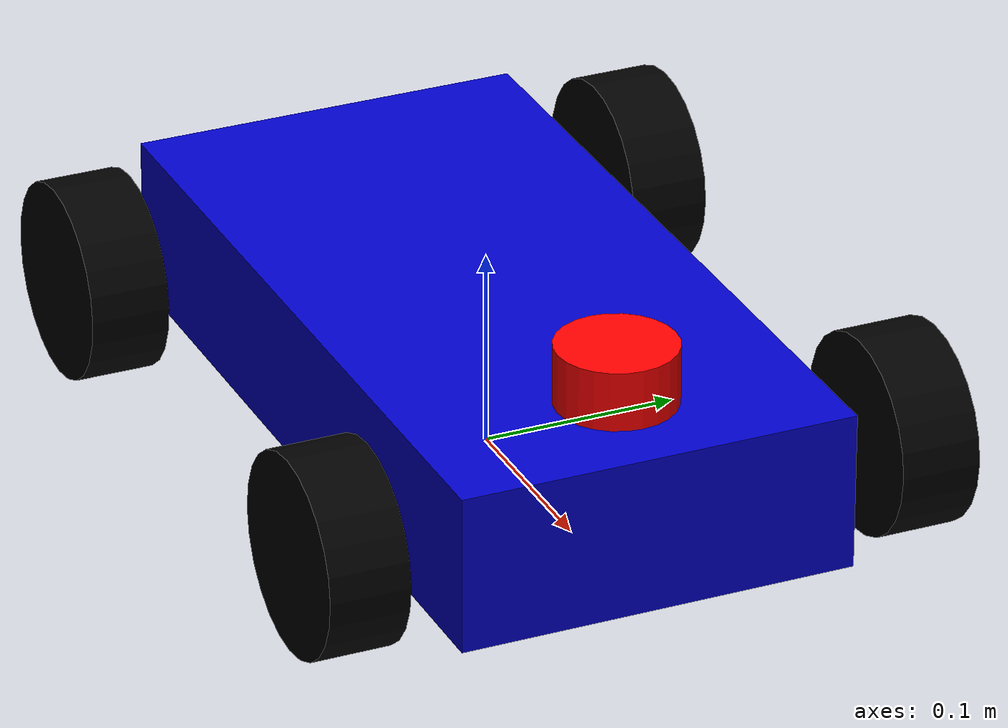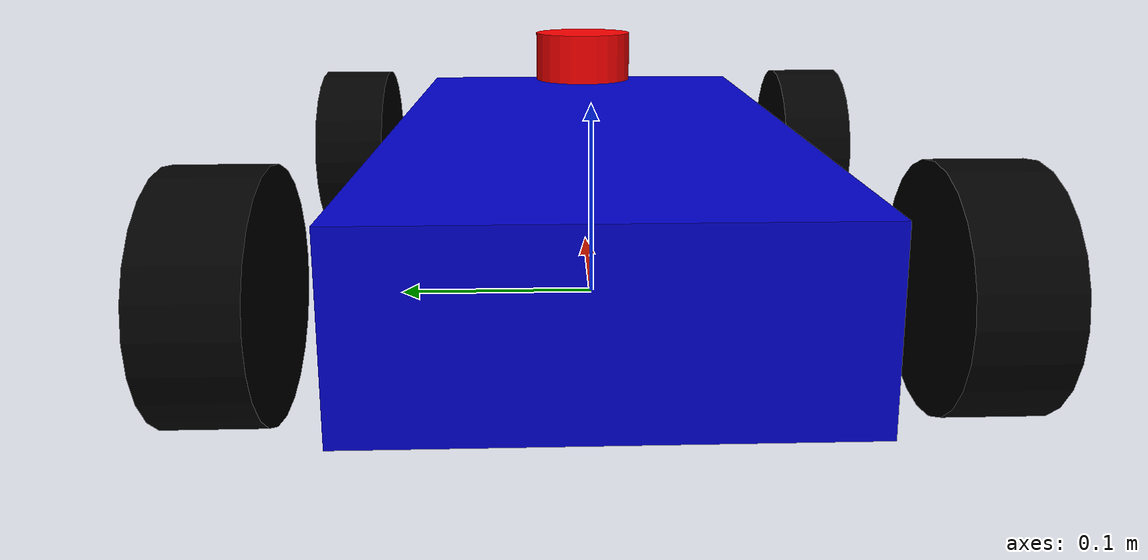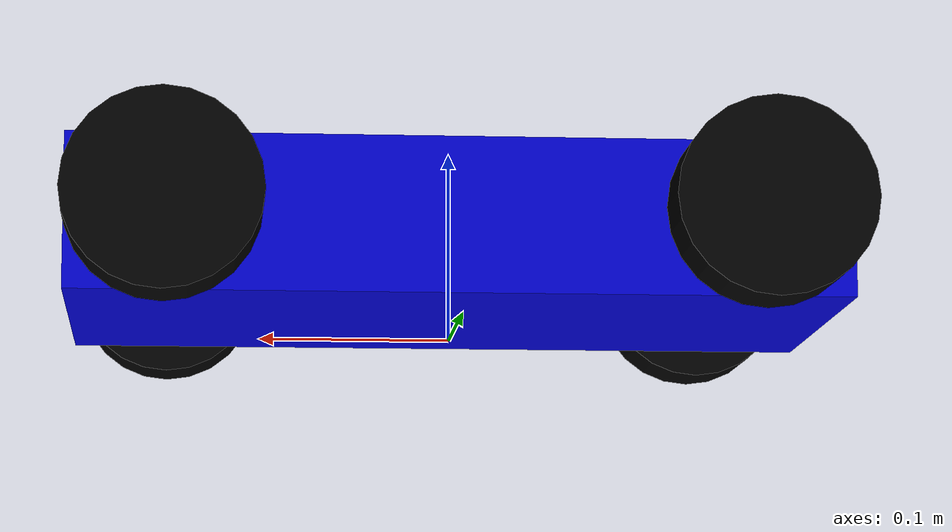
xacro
<?xml version="1.0"?>
<robot xmlns:xacro="http://ros.org/wiki/xacro" name="car">

  <!-- Properties -->
  <xacro:property name="wheelbase" value="0.3"/>
  <xacro:property name="track_width" value="0.25"/>
  <xacro:property name="wheel_radius" value="0.05"/>
  <xacro:property name="wheel_width" value="0.04"/>

  <!-- Base -->
  <link name="base_footprint"/>

  <link name="base_link">
    <visual>
      <geometry>
        <box size="0.4 0.2 0.08"/>
      </geometry>
      <material name="blue">
        <color rgba="0 0 0.8 1"/>
      </material>
    </visual>
    <collision>
      <geometry>
        <box size="0.4 0.2 0.08"/>
      </geometry>
    </collision>
    <inertial>
      <mass value="5"/>
      <inertia ixx="0.05" ixy="0" ixz="0" iyy="0.1" iyz="0" izz="0.1"/>
    </inertial>
  </link>

  <joint name="base_joint" type="fixed">
    <parent link="base_footprint"/>
    <child link="base_link"/>
    <origin xyz="0 0 0.05"/>
  </joint>

  <!-- LiDAR -->
  <link name="laser">
    <visual>
      <geometry>
        <cylinder radius="0.03" length="0.03"/>
      </geometry>
      <material name="red">
        <color rgba="1 0 0 1"/>
      </material>
    </visual>
    <collision>
      <geometry>
        <cylinder radius="0.03" length="0.03"/>
      </geometry>
    </collision>
    <inertial>
      <mass value="0.1"/>
      <inertia ixx="0.001" ixy="0" ixz="0" iyy="0.001" iyz="0" izz="0.001"/>
    </inertial>
  </link>

  <joint name="laser_joint" type="fixed">
    <parent link="base_link"/>
    <child link="laser"/>
    <origin xyz="0.15 0 0.06"/>
  </joint>

  <!-- IMU -->
  <link name="imu_link">
    <visual>
      <geometry>
        <box size="0.02 0.02 0.01"/>
      </geometry>
      <material name="green">
        <color rgba="0 1 0 1"/>
      </material>
    </visual>
    <collision>
      <geometry>
        <box size="0.02 0.02 0.01"/>
      </geometry>
    </collision>
    <inertial>
      <mass value="0.01"/>
      <inertia ixx="0.0001" ixy="0" ixz="0" iyy="0.0001" iyz="0" izz="0.0001"/>
    </inertial>
  </link>

  <joint name="imu_joint" type="fixed">
    <parent link="base_link"/>
    <child link="imu_link"/>
    <origin xyz="0 0 0.02"/>
  </joint>

  <!-- Four Wheels -->
  <!-- Front Left -->
  <link name="front_left_wheel">
    <visual>
      <geometry>
        <cylinder radius="${wheel_radius}" length="${wheel_width}"/>
      </geometry>
      <material name="black">
        <color rgba="0 0 0 1"/>
      </material>
    </visual>
    <collision>
      <geometry>
        <cylinder radius="${wheel_radius}" length="${wheel_width}"/>
      </geometry>
    </collision>
    <inertial>
      <mass value="0.5"/>
      <inertia ixx="0.001" ixy="0" ixz="0" iyy="0.001" iyz="0" izz="0.001"/>
    </inertial>
  </link>

  <joint name="front_left_wheel_joint" type="continuous">
    <parent link="base_link"/>
    <child link="front_left_wheel"/>
    <origin xyz="0.15 ${track_width/2 + 0.02} 0" rpy="${-pi/2} 0 0"/>
    <axis xyz="0 0 1"/>
  </joint>

  <!-- Front Right -->
  <link name="front_right_wheel">
    <visual>
      <geometry>
        <cylinder radius="${wheel_radius}" length="${wheel_width}"/>
      </geometry>
      <material name="black">
        <color rgba="0 0 0 1"/>
      </material>
    </visual>
    <collision>
      <geometry>
        <cylinder radius="${wheel_radius}" length="${wheel_width}"/>
      </geometry>
    </collision>
    <inertial>
      <mass value="0.5"/>
      <inertia ixx="0.001" ixy="0" ixz="0" iyy="0.001" iyz="0" izz="0.001"/>
    </inertial>
  </link>

  <joint name="front_right_wheel_joint" type="continuous">
    <parent link="base_link"/>
    <child link="front_right_wheel"/>
    <origin xyz="0.15 ${-track_width/2 - 0.02} 0" rpy="${-pi/2} 0 0"/>
    <axis xyz="0 0 1"/>
  </joint>

  <!-- Rear Left -->
  <link name="rear_left_wheel">
    <visual>
      <geometry>
        <cylinder radius="${wheel_radius}" length="${wheel_width}"/>
      </geometry>
      <material name="black">
        <color rgba="0 0 0 1"/>
      </material>
    </visual>
    <collision>
      <geometry>
        <cylinder radius="${wheel_radius}" length="${wheel_width}"/>
      </geometry>
    </collision>
    <inertial>
      <mass value="0.5"/>
      <inertia ixx="0.001" ixy="0" ixz="0" iyy="0.001" iyz="0" izz="0.001"/>
    </inertial>
  </link>

  <joint name="rear_left_wheel_joint" type="continuous">
    <parent link="base_link"/>
    <child link="rear_left_wheel"/>
    <origin xyz="-0.15 ${track_width/2 + 0.02} 0" rpy="${-pi/2} 0 0"/>
    <axis xyz="0 0 1"/>
  </joint>

  <!-- Rear Right -->
  <link name="rear_right_wheel">
    <visual>
      <geometry>
        <cylinder radius="${wheel_radius}" length="${wheel_width}"/>
      </geometry>
      <material name="black">
        <color rgba="0 0 0 1"/>
      </material>
    </visual>
    <collision>
      <geometry>
        <cylinder radius="${wheel_radius}" length="${wheel_width}"/>
      </geometry>
    </collision>
    <inertial>
      <mass value="0.5"/>
      <inertia ixx="0.001" ixy="0" ixz="0" iyy="0.001" iyz="0" izz="0.001"/>
    </inertial>
  </link>

  <joint name="rear_right_wheel_joint" type="continuous">
    <parent link="base_link"/>
    <child link="rear_right_wheel"/>
    <origin xyz="-0.15 ${-track_width/2 - 0.02} 0" rpy="${-pi/2} 0 0"/>
    <axis xyz="0 0 1"/>
  </joint>

  <!-- Gazebo plugins -->

  <!-- Differential drive (4-wheel drive) -->
  <gazebo>
    <plugin name="diff_drive" filename="libgazebo_ros_diff_drive.so">
      <update_rate>50</update_rate>
      <left_joint>rear_left_wheel_joint</left_joint>
      <right_joint>rear_right_wheel_joint</right_joint>
      <wheel_separation>0.29</wheel_separation>
      <wheel_diameter>0.1</wheel_diameter>
      <max_wheel_torque>50</max_wheel_torque>
      <max_wheel_acceleration>2.0</max_wheel_acceleration>
      <command_topic>cmd_vel</command_topic>
      <publish_odom>true</publish_odom>
      <publish_odom_tf>true</publish_odom_tf>
      <publish_wheel_tf>true</publish_wheel_tf>
      <odometry_topic>odom</odometry_topic>
      <odometry_frame>odom</odometry_frame>
      <robot_base_frame>base_footprint</robot_base_frame>
    </plugin>
  </gazebo>

  <!-- LiDAR sensor -->
  <gazebo reference="laser">
    <sensor type="ray" name="lidar">
      <always_on>true</always_on>
      <visualize>true</visualize>
      <update_rate>10</update_rate>
      <ray>
        <scan>
          <horizontal>
            <samples>360</samples>
            <resolution>1</resolution>
            <min_angle>-3.14</min_angle>
            <max_angle>3.14</max_angle>
          </horizontal>
        </scan>
        <range>
          <min>0.3</min>
          <max>10.0</max>
        </range>
      </ray>
      <plugin name="lidar" filename="libgazebo_ros_ray_sensor.so">
        <ros>
          <remapping>~/out:=scan</remapping>
        </ros>
        <output_type>sensor_msgs/LaserScan</output_type>
        <frame_name>laser</frame_name>
      </plugin>
    </sensor>
  </gazebo>

  <!-- IMU sensor -->
  <gazebo reference="imu_link">
    <sensor name="imu_sensor" type="imu">
      <always_on>true</always_on>
      <update_rate>100</update_rate>
      <plugin name="imu_plugin" filename="libgazebo_ros_imu_sensor.so">
        <ros>
          <remapping>~/out:=imu/data</remapping>
        </ros>
        <initial_orientation_as_reference>false</initial_orientation_as_reference>
      </plugin>
    </sensor>
  </gazebo>

  <!-- Colors and friction -->
  <gazebo reference="base_link">
    <material>Gazebo/Blue</material>
  </gazebo>
  <gazebo reference="laser">
    <material>Gazebo/Red</material>
  </gazebo>
  <gazebo reference="imu_link">
    <material>Gazebo/Green</material>
  </gazebo>
  <gazebo reference="front_left_wheel">
    <material>Gazebo/Black</material>
    <mu1>1.0</mu1>
    <mu2>1.0</mu2>
  </gazebo>
  <gazebo reference="front_right_wheel">
    <material>Gazebo/Black</material>
    <mu1>1.0</mu1>
    <mu2>1.0</mu2>
  </gazebo>
  <gazebo reference="rear_left_wheel">
    <material>Gazebo/Black</material>
    <mu1>1.0</mu1>
    <mu2>1.0</mu2>
  </gazebo>
  <gazebo reference="rear_right_wheel">
    <material>Gazebo/Black</material>
    <mu1>1.0</mu1>
    <mu2>1.0</mu2>
  </gazebo>

</robot>
